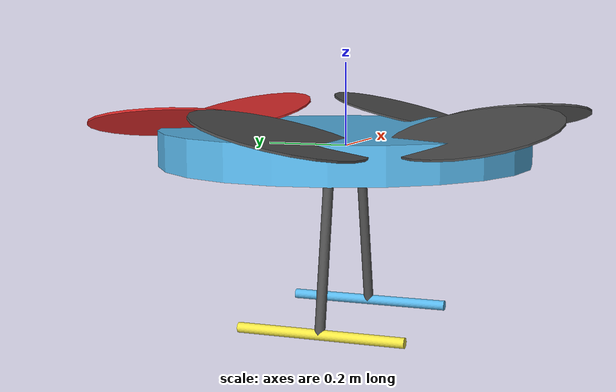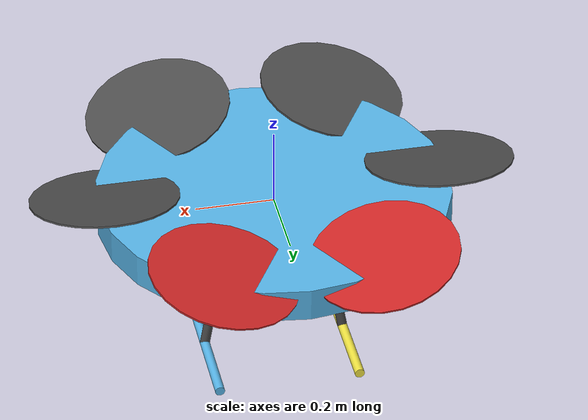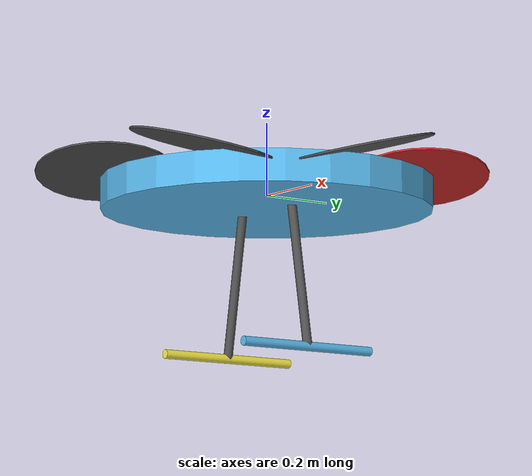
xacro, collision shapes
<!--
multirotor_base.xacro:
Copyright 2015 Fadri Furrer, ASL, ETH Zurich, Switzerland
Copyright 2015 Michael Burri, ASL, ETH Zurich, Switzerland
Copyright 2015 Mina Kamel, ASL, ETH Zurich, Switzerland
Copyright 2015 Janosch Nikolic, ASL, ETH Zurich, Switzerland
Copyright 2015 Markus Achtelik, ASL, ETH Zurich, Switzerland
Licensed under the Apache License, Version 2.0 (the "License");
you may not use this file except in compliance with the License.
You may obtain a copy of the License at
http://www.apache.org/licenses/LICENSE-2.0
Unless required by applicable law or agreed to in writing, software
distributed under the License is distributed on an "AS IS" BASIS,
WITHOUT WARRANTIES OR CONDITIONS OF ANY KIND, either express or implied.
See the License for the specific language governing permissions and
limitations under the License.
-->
<?xml version="1.0"?>

<robot name="hexatilt" xmlns:xacro="http://ros.org/wiki/xacro">
  <!-- Properties that can be assigned at build time as arguments.
  Is there a reason not to make all properties arguments?
  -->
  <xacro:arg name='name' default='hexatilt' />
  <xacro:arg name='mavlink_addr' default='INADDR_ANY' />
  <xacro:arg name='mavlink_udp_port' default='14560' />
  <xacro:arg name='serial_enabled' default='false' />
  <xacro:arg name='serial_device' default='/dev/ttyACM0' />
  <xacro:arg name='baudrate' default='921600' />
  <xacro:arg name='qgc_addr' default='INADDR_ANY' />
  <xacro:arg name='qgc_udp_port' default='14550' />
  <xacro:arg name='hil_mode' default='false' />
  <xacro:arg name='hil_state_level' default='false' />
  <xacro:arg name='vehicle_is_tailsitter' default='false' />
  <xacro:arg name='visual_material' default='DarkGrey' />
  <xacro:arg name='enable_mavlink_interface' default='false' />
  <xacro:arg name='enable_wind' default='false' />
  <xacro:arg name='use_px4_plugins' default='false' />
  <!-- The following causes segfault with multiple vehicles if defaults to true!!! -->
  <xacro:arg name='enable_ground_truth' default='false' />
  <xacro:arg name='enable_logging' default='false' />
  <xacro:arg name='log_file' default='hexatilt' />

  <!-- macros for gazebo plugins, sensors -->

  <!-- macros for gazebo plugins, for flypulator -->

  <!-- Instantiate hexatilt "mechanics" -->
  <xacro:include filename="$(find flypulator_description_new)/urdf/hexatilt.xacro" />

  <xacro:if value="$(arg use_px4_plugins)">

  <xacro:if value="$(arg enable_wind)">
    <xacro:wind_plugin_macro
        namespace="${namespace}"
        wind_direction="0 0 1"
        wind_force_mean="0.7"
        xyz_offset="1 0 0"
        wind_gust_direction="0 0 0"
        wind_gust_duration="0"
        wind_gust_start="0"
        wind_gust_force_mean="0"
        />
  </xacro:if>

    <!-- Instantiate gps plugin. -->
  <xacro:gps_plugin_macro
    namespace="${namespace}"
    gps_noise="true"
    >
  </xacro:gps_plugin_macro>

  <xacro:if value="$(arg enable_mavlink_interface)">
  <!-- Instantiate mavlink telemetry interface. -->
  <xacro:mavlink_interface_macro
    namespace="${namespace}"
    imu_sub_topic="/imu"
    gps_sub_topic="/gps"
    mavlink_addr="$(arg mavlink_addr)"
    mavlink_udp_port="$(arg mavlink_udp_port)"
    serial_enabled="$(arg serial_enabled)"
    serial_device="$(arg serial_device)"
    baudrate="$(arg baudrate)"
    qgc_addr="$(arg qgc_addr)"
    qgc_udp_port="$(arg qgc_udp_port)"
    hil_mode="$(arg hil_mode)"
    hil_state_level="$(arg hil_state_level)"
    vehicle_is_tailsitter="$(arg vehicle_is_tailsitter)"
    >
  </xacro:mavlink_interface_macro>

  <!-- Mount an ADIS16448 IMU. -->
  <xacro:imu_plugin_macro
    namespace="${namespace}"
    imu_suffix=""
    parent_link="base_link"
    imu_topic="/imu"
    mass_imu_sensor="0.015"
    gyroscope_noise_density="0.0003394"
    gyroscopoe_random_walk="0.000038785"
    gyroscope_bias_correlation_time="1000.0"
    gyroscope_turn_on_bias_sigma="0.0087"
    accelerometer_noise_density="0.004"
    accelerometer_random_walk="0.006"
    accelerometer_bias_correlation_time="300.0"
    accelerometer_turn_on_bias_sigma="0.1960"
  >
    <inertia ixx="0.00001" ixy="0.0" ixz="0.0" iyy="0.00001" iyz="0.0" izz="0.00001" />
    <origin xyz="0 0 0" rpy="0 0 0" />
  </xacro:imu_plugin_macro>
  </xacro:if>
  <xacro:if value="$(arg enable_ground_truth)">
    <!-- Mount an IMU providing ground truth. -->
    <xacro:imu_plugin_macro
      namespace="${namespace}"
      imu_suffix="gt"
      parent_link="base_link"
      imu_topic="ground_truth/imu"
      mass_imu_sensor="0.00001"
      gyroscope_noise_density="0.0"
      gyroscopoe_random_walk="0.0"
      gyroscope_bias_correlation_time="1000.0"
      gyroscope_turn_on_bias_sigma="0.0"
      accelerometer_noise_density="0.0"
      accelerometer_random_walk="0.0"
      accelerometer_bias_correlation_time="300.0"
      accelerometer_turn_on_bias_sigma="0.0"
    >
      <inertia ixx="0.00001" ixy="0.0" ixz="0.0" iyy="0.00001" iyz="0.0" izz="0.00001" />
      <origin xyz="0 0 0" rpy="0 0 0" />
    </xacro:imu_plugin_macro>

    <!-- Mount a generic odometry sensor providing ground truth. -->
    <xacro:odometry_plugin_macro
      namespace="${namespace}/ground_truth"
      odometry_sensor_suffix="gt"
      parent_link="base_link"
      pose_topic="pose"
      pose_with_covariance_topic="pose_with_covariance"
      position_topic="position"
      transform_topic="transform"
      odometry_topic="odometry"
      parent_frame_id="world"
      mass_odometry_sensor="0.00001"
      measurement_divisor="1"
      measurement_delay="0"
      unknown_delay="0.0"
      noise_normal_position="0 0 0"
      noise_normal_quaternion="0 0 0"
      noise_normal_linear_velocity="0 0 0"
      noise_normal_angular_velocity="0 0 0"
      noise_uniform_position="0 0 0"
      noise_uniform_quaternion="0 0 0"
      noise_uniform_linear_velocity="0 0 0"
      noise_uniform_angular_velocity="0 0 0"
      enable_odometry_map="false"
      odometry_map=""
      image_scale=""
    >
      <inertia ixx="0.00001" ixy="0.0" ixz="0.0" iyy="0.00001" iyz="0.0" izz="0.00001" /> <!-- [kg.m^2] [kg.m^2] [kg.m^2] [kg.m^2] [kg.m^2] [kg.m^2] -->
      <origin xyz="0.0 0.0 0.0" rpy="0.0 0.0 0.0" />
    </xacro:odometry_plugin_macro>
  </xacro:if>

  <xacro:if value="$(arg enable_logging)">
    <!-- Instantiate a logger -->
    <xacro:bag_plugin_macro
      namespace="${namespace}"
      bag_file="$(arg log_file)"
      rotor_velocity_slowdown_sim="${rotor_velocity_slowdown_sim}"
    >
    </xacro:bag_plugin_macro>
  </xacro:if>

  </xacro:if>
</robot>

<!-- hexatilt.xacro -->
<robot name="hexatilt" xmlns:xacro="http://ros.org/wiki/xacro">
  <!-- Properties -->
  <xacro:property name="namespace" value="/drone" />
  <xacro:property name="PI" value="3.1415926535897931"/>
  <xacro:property name="deg_to_rad" value="0.017453278"/>
  <xacro:property name="rotor_velocity_slowdown_sim" value="10" />
  <xacro:property name="mesh_file" value="hexatilt.dae" />
  <xacro:property name="mesh_scale" value="0.001 0.001 0.001"/>
  <xacro:property name="mesh_scale_prop" value="0.098 0.098 0.098"/>
  <xacro:property name="mass" value="4.5" /> <!-- [kg] -->
  <xacro:property name="body_width" value="0.45" />
  <xacro:property name="body_height" value="0.085" />
  <xacro:property name="mass_rotor" value="0.010" /> <!-- [kg] -->
  <xacro:property name="arm_length_front_x" value="0.22" />
  <xacro:property name="arm_length_back_x" value="0.22" />
  <xacro:property name="arm_length_front_y" value="0.37" />
  <xacro:property name="arm_length_back_y" value="0.37" />
  <!--Added for Hexacopter -->
  <xacro:property name="arm_length_side_x" value="0.43" />
  <xacro:property name="arm_length_side_y" value="0.01" />

  <xacro:property name="leg_pos_side_x" value="0.11" />
  <xacro:property name="mass_leg" value="0.180" /> <!-- [kg] -->
  <xacro:property name="radius_leg" value="0.0125" />
  <xacro:property name="length_leg" value="0.413" />
  <xacro:property name="max_leg_velocity" value="0.10" />
  <xacro:property name="mesh_scale_leg" value="0.1 0.1 0.1"/>

  <xacro:property name="rotor_offset_top" value="0.06" />
  <xacro:property name="radius_rotor" value="0.1905" />
  <xacro:property name="motor_constant" value="8.54858e-06" /> <!-- [kg.m/s^2] -->
  <xacro:property name="moment_constant" value="0.06" />
  <xacro:property name="time_constant_up" value="0.0125" />
  <xacro:property name="time_constant_down" value="0.025" />
  <xacro:property name="max_rot_velocity" value="1100" /> <!-- [rad/s] -->
  <xacro:property name="sin30" value="0.5" />
  <xacro:property name="cos30" value="0.866025403784" />
  <xacro:property name="sqrt2" value="1.4142135623730951" />
  <xacro:property name="rotor_drag_coefficient" value="8.06428e-04" />
  <xacro:property name="rolling_moment_coefficient" value="0.000001" />
  <xacro:property name="color" value="DarkGrey" />

  <!-- Property Blocks -->
  <xacro:property name="body_inertia">
    <inertia ixx="0.0347563" ixy="0.0" ixz="0.0" iyy="0.0458929" iyz="0.0" izz="0.0977" /> <!-- [kg.m^2] [kg.m^2] [kg.m^2] [kg.m^2] [kg.m^2] [kg.m^2] -->
  </xacro:property>

  <!-- inertia of a single rotor, assuming it is a cuboid. Height=3mm, width=15mm -->
  <xacro:property name="rotor_inertia">
    <inertia
    ixx="${1/12 * mass_rotor * (0.015 * 0.015 + 0.003 * 0.003) * rotor_velocity_slowdown_sim}"
    iyy="${1/12 * mass_rotor * (4 * radius_rotor * radius_rotor + 0.003 * 0.003) * rotor_velocity_slowdown_sim}"
    izz="${1/12 * mass_rotor * (4 * radius_rotor * radius_rotor + 0.015 * 0.015) * rotor_velocity_slowdown_sim}"
    ixy="0.0" ixz="0.0"  iyz="0.0" /> <!-- [kg.m^2] [kg.m^2] [kg.m^2] [kg.m^2] [kg.m^2] [kg.m^2] -->
  </xacro:property>

  <!-- Included URDF Files -->
  <xacro:include filename="$(find flypulator_description_new)/urdf/multirotor_base.xacro" />

  <!-- Instantiate multirotor_base_macro once -->
  <xacro:multirotor_base_macro
    robot_namespace="${namespace}"
    mass="${mass}"
    body_width="${body_width}"
    body_height="${body_height}"
    mesh_file="${mesh_file}"
    mesh_scale="${mesh_scale}"
    color="${color}"
    >
    <xacro:insert_block name="body_inertia" />
  </xacro:multirotor_base_macro>

  <!-- Instantiate rotors -->
  <xacro:vertical_rotor
    robot_namespace="${namespace}"
    suffix="front_right"
    direction="ccw"
    motor_constant="${motor_constant}"
    moment_constant="${moment_constant}"
    parent="base_link"
    mass_rotor="${mass_rotor}"
    radius_rotor="${radius_rotor}"
    time_constant_up="${time_constant_up}"
    time_constant_down="${time_constant_down}"
    max_rot_velocity="${max_rot_velocity}"
    motor_number="0"
    rotor_drag_coefficient="${rotor_drag_coefficient}"
    rolling_moment_coefficient="${rolling_moment_coefficient}"
    mesh="hexatilt_prop"
    mesh_scale="${mesh_scale_prop}"
    color="DarkGrey">
    <origin xyz="${arm_length_front_x+0.01} -${arm_length_front_y} ${rotor_offset_top}" rpy="${13.6*deg_to_rad} 0  ${120*deg_to_rad}" />
    <xacro:insert_block name="rotor_inertia" />
  </xacro:vertical_rotor>

  <xacro:vertical_rotor
    robot_namespace="${namespace}"
    suffix="back_left"
    direction="ccw"
    motor_constant="${motor_constant}"
    moment_constant="${moment_constant}"
    parent="base_link"
    mass_rotor="${mass_rotor}"
    radius_rotor="${radius_rotor}"
    time_constant_up="${time_constant_up}"
    time_constant_down="${time_constant_down}"
    max_rot_velocity="${max_rot_velocity}"
    motor_number="1"
    rotor_drag_coefficient="${rotor_drag_coefficient}"
    rolling_moment_coefficient="${rolling_moment_coefficient}"
    mesh="hexatilt_prop"
    mesh_scale="${mesh_scale_prop}"
    color="Red">
    <origin xyz="-${arm_length_back_x-0.02} ${arm_length_back_y} ${rotor_offset_top}" rpy="-${13.6*deg_to_rad} 0  -${60*deg_to_rad}" />
    <xacro:insert_block name="rotor_inertia" />
  </xacro:vertical_rotor>

  <xacro:vertical_rotor robot_namespace="${namespace}"
    suffix="front_left"
    direction="cw"
    motor_constant="${motor_constant}"
    moment_constant="${moment_constant}"
    parent="base_link"
    mass_rotor="${mass_rotor}"
    radius_rotor="${radius_rotor}"
    time_constant_up="${time_constant_up}"
    time_constant_down="${time_constant_down}"
    max_rot_velocity="${max_rot_velocity}"
    motor_number="2"
    rotor_drag_coefficient="${rotor_drag_coefficient}"
    rolling_moment_coefficient="${rolling_moment_coefficient}"
    mesh="hexatilt_prop"
    mesh_scale="${mesh_scale_prop}"
    color="Red">
    <origin xyz="${arm_length_front_x-0.02} ${arm_length_front_y} ${rotor_offset_top}" rpy= "${13.6*deg_to_rad} 0  ${240*deg_to_rad}"/>
    <xacro:insert_block name="rotor_inertia" />
  </xacro:vertical_rotor>

  <xacro:vertical_rotor robot_namespace="${namespace}"
    suffix="back_right"
    direction="cw"
    motor_constant="${motor_constant}"
    moment_constant="${moment_constant}"
    parent="base_link"
    mass_rotor="${mass_rotor}"
    radius_rotor="${radius_rotor}"
    time_constant_up="${time_constant_up}"
    time_constant_down="${time_constant_down}"
    max_rot_velocity="${max_rot_velocity}"
    motor_number="3"
    rotor_drag_coefficient="${rotor_drag_coefficient}"
    rolling_moment_coefficient="${rolling_moment_coefficient}"
    mesh="hexatilt_prop"
    mesh_scale="${mesh_scale_prop}"
    color="DarkGrey">
    <origin xyz="-${arm_length_back_x+0.01} -${arm_length_back_y} ${rotor_offset_top}" rpy= "-${13.6*deg_to_rad} 0  ${60*deg_to_rad}"/>
    <xacro:insert_block name="rotor_inertia" />
  </xacro:vertical_rotor>

  <xacro:vertical_rotor robot_namespace="${namespace}"
    suffix="back_right"
    direction="cw"
    motor_constant="${motor_constant}"
    moment_constant="${moment_constant}"
    parent="base_link"
    mass_rotor="${mass_rotor}"
    radius_rotor="${radius_rotor}"
    time_constant_up="${time_constant_up}"
    time_constant_down="${time_constant_down}"
    max_rot_velocity="${max_rot_velocity}"
    motor_number="4"
    rotor_drag_coefficient="${rotor_drag_coefficient}"
    rolling_moment_coefficient="${rolling_moment_coefficient}"
    mesh="hexatilt_prop"
    mesh_scale="${mesh_scale_prop}"
    color="DarkGrey">
    <origin xyz="-${arm_length_side_x} -${arm_length_side_y} ${rotor_offset_top}" rpy="${13.6*deg_to_rad} 0  ${0*deg_to_rad}" />
    <xacro:insert_block name="rotor_inertia" />
  </xacro:vertical_rotor>

  <xacro:vertical_rotor robot_namespace="${namespace}"
    suffix="back_right"
    direction="cw"
    motor_constant="${motor_constant}"
    moment_constant="${moment_constant}"
    parent="base_link"
    mass_rotor="${mass_rotor}"
    radius_rotor="${radius_rotor}"
    time_constant_up="${time_constant_up}"
    time_constant_down="${time_constant_down}"
    max_rot_velocity="${max_rot_velocity}"
    motor_number="5"
    rotor_drag_coefficient="${rotor_drag_coefficient}"
    rolling_moment_coefficient="${rolling_moment_coefficient}"
    mesh="hexatilt_prop"
    mesh_scale="${mesh_scale_prop}"
    color="DarkGrey">
    <origin xyz="${arm_length_side_x} -${arm_length_side_y} ${rotor_offset_top}" rpy="-${13.6*deg_to_rad} 0  ${180*deg_to_rad}" />
    <xacro:insert_block name="rotor_inertia" />
  </xacro:vertical_rotor>

<xacro:landing_gear robot_namespace="${namespace}"
    suffix="left"
    parent="base_link"
    mass_leg="${mass_leg}"
    radius_leg="${radius_leg}"
    max_leg_velocity="${max_leg_velocity}"
    leg_number="1"
    mesh="hexatilt_leg"
    length_leg="${length_leg}"
    mesh_scale="${mesh_scale_leg}"
    color="DarkGrey"
    reflect="-1">
    <origin xyz="${leg_pos_side_x} 0 -0.02" rpy="0 -${10*deg_to_rad} 0" />
    <xacro:insert_block name="rotor_inertia" />
  </xacro:landing_gear>

<xacro:landing_gear robot_namespace="${namespace}"
    suffix="right"
    parent="base_link"
    mass_leg="${mass_leg}"
    radius_leg="${radius_leg}"
    max_leg_velocity="${max_leg_velocity}"
    leg_number="2"
    mesh="hexatilt_leg"
    length_leg="${length_leg}"
    mesh_scale="${mesh_scale_leg}"
    reflect="1"
    color="DarkGrey">
    <origin xyz="-${leg_pos_side_x} 0 -0.02" rpy="0 ${10*deg_to_rad} 0" />

    <xacro:insert_block name="rotor_inertia" />
  </xacro:landing_gear>

  <gazebo>
    <plugin name="fake_sensor_plugin" filename="libfake_sensor_plugin.so">
    </plugin>
  </gazebo>

  <gazebo>
    <plugin name="gazebo_ros_control" filename="libgazebo_ros_control.so">
      <robotNamespace>${namespace}</robotNamespace>
    </plugin>
  </gazebo>

  <gazebo>
    <plugin name="drone_internal_imu_plugin" filename="libhector_gazebo_ros_imu.so" >
      <robotNamespace>${namespace}</robotNamespace>
      <alwaysOn>true</alwaysOn>
      <bodyName>base_link</bodyName>
      <frameName>base_link</frameName>
      <topicName>IMU/imu_data</topicName>
      <serviceName>drone/internal_sensors/imu_service</serviceName>
      <updateRate>100.0</updateRate>
      <gaussianNoise>0.001</gaussianNoise>
      <!-- accelerometer params -->
      <accelOffset>0.0 0.0 0.0</accelOffset>
      <accelGaussianNoise>0.0003 0.0003 0.0003</accelGaussianNoise>
      <accelDrift>0.00004 0.00004 0.00004</accelDrift>
      <accelFrequency>0.0025 0.0025 0.0025</accelFrequency>
      <!-- gyroscope params -->
      <rateOffset>0.0 0.0 0.0</rateOffset>
      <rateDrift>0.01 0.01 0.01</rateDrift>
      <rateDriftFrequency>0.001 0.001 0.001</rateDriftFrequency>
      <rateGaussianNoise>0.01 0.01 0.01</rateGaussianNoise>
    </plugin>
  </gazebo>

  <gazebo>
    <plugin name="drone_internal_magnetic_sim" filename="libhector_gazebo_ros_magnetic.so">
      <robotNamespace>${namespace}</robotNamespace>
      <updateRate>100.0</updateRate>
      <bodyName>base_link</bodyName>
      <frameId>base_link</frameId>
      <topicName>MAGNET/magnetic_data</topicName>
      <offset>0 0 0</offset>
      <drift>0.0 0.0 0.0</drift>
      <gaussianNoise>1.3e-3 1.3e-3 1.3e-3</gaussianNoise>
    </plugin>
  </gazebo>

  <gazebo>
    <plugin name="drone_internal_gps_sim" filename="libhector_gazebo_ros_gps.so">
      <robotNamespace>${namespace}</robotNamespace>
      <updateRate>4.0</updateRate>
      <bodyName>base_link</bodyName>
      <frameId>base_link</frameId>
      <topicName>GPS/fix</topicName>
      <velocityTopicName>GPS/fix_velocity</velocityTopicName>
      <referenceLatitude>49.860246</referenceLatitude>
      <referenceLongitude>8.687077</referenceLongitude>
      <drift>0.0 0.0 0.0</drift>
      <gaussianNoise>0.01 0.01 0.01</gaussianNoise>
      <velocityDrift>0 0 0</velocityDrift>
      <velocityGaussianNoise>0.01 0.01 0.01</velocityGaussianNoise>
    </plugin>
  </gazebo>

  <gazebo reference="base_link">
    <sensor type="camera" name="camera1">
      <update_rate>30.0</update_rate>
      <camera name="head">
        <vertical_fov>3.1415926</vertical_fov>
        <image>
          <width>800</width>
          <height>800</height>
          <format>R8G8B8</format>
        </image>
        <clip>
          <near>0.02</near>
          <far>300</far>
        </clip>
        <noise>
          <type>gaussian</type>  -->
          <!-- Noise is sampled independently per pixel on each frame.
               That pixel's noise value is added to each of its color
               channels, which at that point lie in the range [0,1]. -->
          <mean>0.0</mean>
          <stddev>0.007</stddev>
        </noise>
      </camera>
      <plugin name="camera_controller" filename="libgazebo_ros_camera.so">
        <robotNamespace>${namespace}</robotNamespace>
        <alwaysOn>true</alwaysOn>
        <updateRate>0.0</updateRate>
        <cameraName>camera1</cameraName>
        <imageTopicName>image_raw</imageTopicName>
        <cameraInfoTopicName>camera_info</cameraInfoTopicName>
        <frameName>base_link</frameName>
        <hackBaseline>0.07</hackBaseline>
        <distortionK1>0.0</distortionK1>
        <distortionK2>0.0</distortionK2>
        <distortionK3>0.0</distortionK3>
        <distortionT1>0.0</distortionT1>
        <distortionT2>0.0</distortionT2>
      </plugin>
    </sensor>
  </gazebo>

<gazebo>
    <plugin name="propulsion_plugin_hexa" filename="libpropulsion_plugin_hexa.so">
    </plugin>
  </gazebo>

</robot>

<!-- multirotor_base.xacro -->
<robot xmlns:xacro="http://ros.org/wiki/xacro">
  <!-- Main multirotor link -->
  <xacro:macro name="multirotor_base_macro"
    params="robot_namespace mass body_width body_height mesh_file mesh_scale color *inertia">
    <link name="base_link"></link>

    <joint name="base_joint" type="fixed">
      <origin xyz="0 0 0" rpy="0 0 0" />
      <parent link="base_link" />
      <child link="base_link_inertia" />
    </joint>

    <link name="base_link_inertia">
      <inertial>
        <mass value="${mass}" />  <!-- [kg] -->
        <origin xyz="0 0 0" />
        <xacro:insert_block name="inertia" />
      </inertial>

      <visual>
        <origin xyz="0 0 0" rpy="0 0 0" />
        <geometry>
          <mesh filename="package://hexatilt_description/meshes/${mesh_file}"
            scale="${mesh_scale}" />

        </geometry>
      </visual>

      <collision>
        <origin xyz="0 0 0" rpy="0 0 0" />
        <geometry>
            <cylinder length="${body_height}" radius="${body_width}" />
          <!--box size="${body_width} ${body_width} ${body_height}" /-->
        </geometry>
      </collision>
    </link>

    <!-- attach multirotor_base_plugin to the base_link -->
    <gazebo>
      <plugin filename="librotors_gazebo_multirotor_base_plugin.so" name="rosbag">
        <robotNamespace>${robot_namespace}</robotNamespace>
        <linkName>base_link</linkName>
        <rotorVelocitySlowdownSim>${rotor_velocity_slowdown_sim}</rotorVelocitySlowdownSim>
      </plugin>
    </gazebo>
    <gazebo reference="base_link">
      <material>Gazebo/${color}</material>
      <collision name='base_link_inertia_collision'>
        <surface>
          <contact>
            <ode>
              <min_depth>0.001</min_depth>
              <max_vel>0.0</max_vel>
            </ode>
          </contact>
          <friction>
            <ode/>
          </friction>
        </surface>
      </collision>
   </gazebo>
  </xacro:macro>

  <!-- Rotor joint and link -->
  <xacro:macro name="vertical_rotor"
    params="robot_namespace suffix direction motor_constant moment_constant parent mass_rotor radius_rotor time_constant_up time_constant_down max_rot_velocity motor_number rotor_drag_coefficient rolling_moment_coefficient color mesh mesh_scale *origin *inertia">
    <joint name="rotor_${motor_number}_joint" type="continuous">
      <xacro:insert_block name="origin" />
      <axis xyz="0 0 1" />
      <!-- TODO(ff): not currently set because it's not yet supported -->
      <parent link="${parent}" />
      <child link="rotor_${motor_number}" />

    </joint>
    <!-- TODO(ff): not currently set because it's not yet supported -->
    <link name="rotor_${motor_number}">
      <inertial>
        <mass value="${mass_rotor}" /> <!-- [kg] -->
        <xacro:insert_block name="inertia" />
      </inertial>
      <visual>
        <geometry>

          <mesh filename="package://hexatilt_description/meshes/${mesh}_${direction}.dae"
            scale="${mesh_scale}" />
        </geometry>
      </visual>
      <collision>
        <geometry>
          <cylinder length="0.005" radius="${radius_rotor}" />
        </geometry>
      </collision>
    </link>
    <gazebo>
      <plugin name="${suffix}_motor_model" filename="librotors_gazebo_motor_model.so">
        <robotNamespace>${robot_namespace}</robotNamespace>
        <jointName>rotor_${motor_number}_joint</jointName>
        <linkName>rotor_${motor_number}</linkName>
        <turningDirection>${direction}</turningDirection>
        <timeConstantUp>${time_constant_up}</timeConstantUp>
        <timeConstantDown>${time_constant_down}</timeConstantDown>
        <maxRotVelocity>${max_rot_velocity}</maxRotVelocity>
        <motorConstant>${motor_constant}</motorConstant>
        <momentConstant>${moment_constant}</momentConstant>
        <commandSubTopic>/gazebo/command/motor_speed</commandSubTopic>
        <motorNumber>${motor_number}</motorNumber>
        <rotorDragCoefficient>${rotor_drag_coefficient}</rotorDragCoefficient>
        <rollingMomentCoefficient>${rolling_moment_coefficient}</rollingMomentCoefficient>
        <motorSpeedPubTopic>/motor_speed/${motor_number}</motorSpeedPubTopic>
        <rotorVelocitySlowdownSim>${rotor_velocity_slowdown_sim}</rotorVelocitySlowdownSim>
      </plugin>
    </gazebo>
    <gazebo reference="rotor_${motor_number}">
      <material>Gazebo/${color}</material>
    </gazebo>
  </xacro:macro>

  <!-- Landing gear links and joints -->
  <xacro:macro name="landing_gear"
    params="robot_namespace suffix reflect parent mass_leg radius_leg length_leg max_leg_velocity leg_number color mesh mesh_scale *origin *inertia">

<!-- Landing gear joint: -->
    <joint name="leg_${leg_number}_joint" type="fixed">
      <xacro:insert_block name="origin" />
      <axis xyz="0 1 0" />
      <!-- TODO(ff): not currently set because it's not yet supported -->

      <parent link="${parent}" />
      <child link="leg_${leg_number}" />
    </joint>

<!-- Leg link -->
    <link name="leg_${leg_number}">
      <inertial>
        <origin xyz="0 0 -${length_leg/2}" rpy="0 0 0 " />
        <mass value="${mass_leg}" /> <!-- [kg] -->
        <xacro:insert_block name="inertia" />
      </inertial>
      <visual>
        <origin xyz="0 0 0" rpy="0 0 0 " />
        <geometry>

          <mesh filename="package://hexatilt_description/meshes/right_leg.dae"
             scale="${mesh_scale}" />
        </geometry>
      </visual>
      <collision>
        <origin xyz="0 0 -${length_leg/2}" rpy="0 0 0 " />
        <geometry>
            <cylinder length="${length_leg}" radius="${radius_leg}" />
        </geometry>
      </collision>
    </link>

<!-- Joint Leg-foot fixed -->
    <joint name="foot_${leg_number}_joint" type="fixed">
      <parent link="leg_${leg_number}" />
      <child link="foot_${leg_number}" />
      <origin xyz="0 0 -${length_leg}" rpy= "1.57 0 0"/>

    </joint>
<!-- Foot link -->
    <link name="foot_${leg_number}">
      <inertial>
        <mass value="${mass_leg}" /> <!-- [kg] -->
        <xacro:insert_block name="inertia" />
      </inertial>

      <collision>
        <geometry>
            <cylinder length="${length_leg}" radius="${radius_leg}" />
        </geometry>
      </collision>
    </link>

    <gazebo>
    </gazebo>
    <gazebo reference="leg_${leg_number}">
      <material>Gazebo/${color}</material>
    </gazebo>
  </xacro:macro>
</robot>
